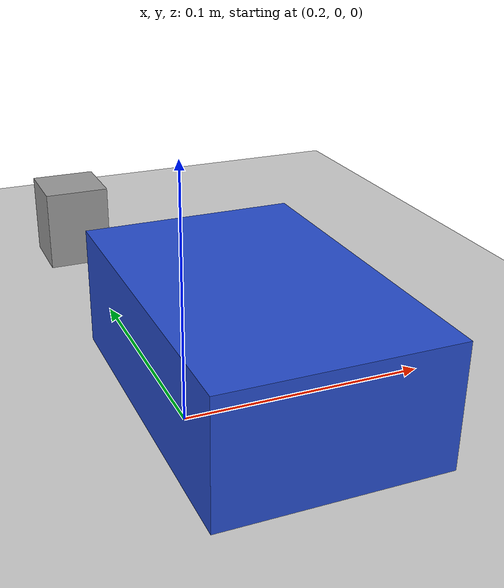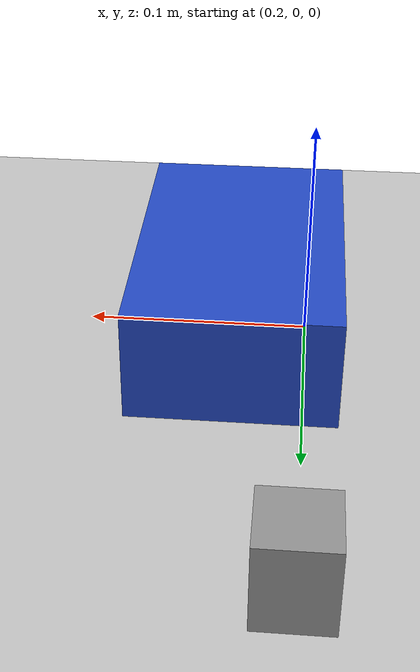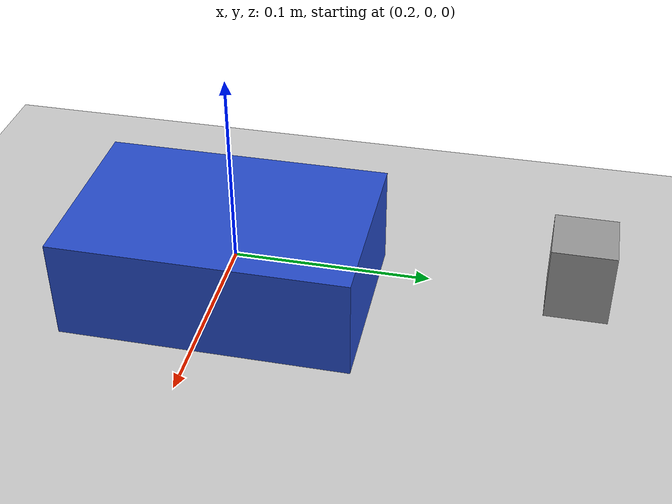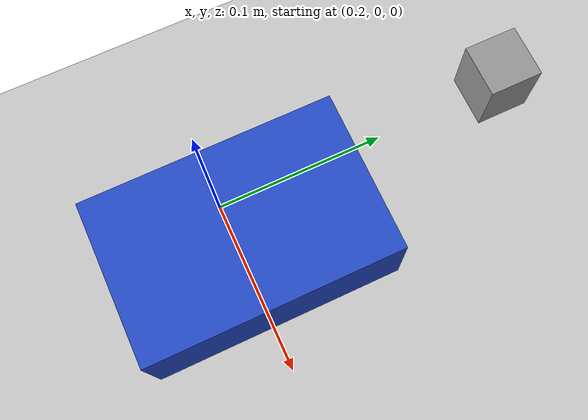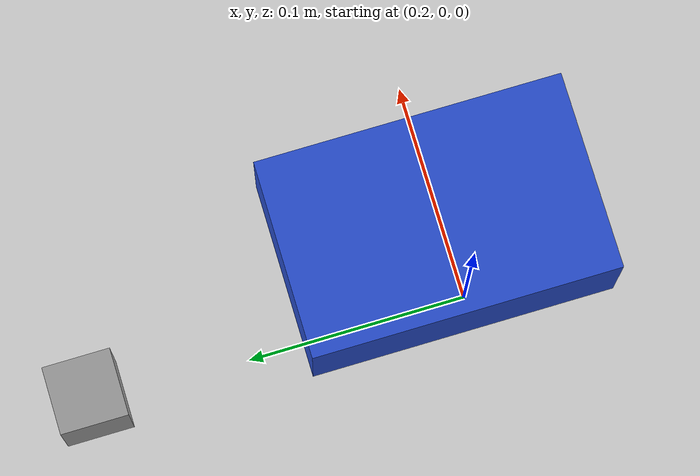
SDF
<sdf version="1.7">
 <world name="default">
  <light name="sun" type="directional">
   <pose>0 0 10 0 -0 0</pose>
   <diffuse>0.8 0.8 0.8 1</diffuse>
   <specular>0.2 0.2 0.2 1</specular>
   <attenuation>
    <range>1000</range>
    <constant>0.9</constant>
    <linear>0.01</linear>
    <quadratic>0.001</quadratic>
   </attenuation>
   <direction>-0.5 0.1 -0.9</direction>
   <spot><inner_angle>0</inner_angle><outer_angle>0</outer_angle><falloff>0</falloff></spot>
  </light>
  <model name="ground_plane">
   <pose>0.1 0 0 0 -0 0</pose>
   <static>1</static>
   <link name="link">
    <collision name="collision">
     <geometry><plane><normal>0 0 1</normal><size>100 100</size></plane></geometry>
     <surface>
      <contact><collide_bitmask>65535</collide_bitmask></contact>
      <friction><ode><mu>100</mu><mu2>50</mu2></ode></friction>
     </surface>
    </collision>
    <visual name="visual">
     <cast_shadows>0</cast_shadows>
     <geometry><plane><normal>0 0 1</normal><size>100 100</size></plane></geometry>
     <material>
      <script><uri>file://media/materials/scripts/gazebo.material</uri><name>Gazebo/Grey</name></script>
     </material>
    </visual>
   </link>
  </model>
  <gravity>0 0 -9.8</gravity>
  <magnetic_field>6e-06 2.3e-05 -4.2e-05</magnetic_field>
  <atmosphere type="adiabatic"/>
  <physics type="ode">
   <max_step_size>0.001</max_step_size>
   <real_time_factor>1</real_time_factor>
   <real_time_update_rate>1000</real_time_update_rate>
  </physics>
  <scene><ambient>0.4 0.4 0.4 1</ambient><background>0.7 0.7 0.7 1</background><shadows>1</shadows></scene>
  <spherical_coordinates>
   <surface_model>EARTH_WGS84</surface_model>
   <latitude_deg>0</latitude_deg>
   <longitude_deg>0</longitude_deg>
   <elevation>0</elevation>
   <heading_deg>0</heading_deg>
  </spherical_coordinates>
  <model name="RealSenseBox">
   <link name="link_0">
    <inertial>
     <mass>0.1</mass>
     <inertia>
      <ixx>0.0166667</ixx>
      <ixy>0</ixy>
      <ixz>0</ixz>
      <iyy>0.0166667</iyy>
      <iyz>0</iyz>
      <izz>0.0166667</izz>
     </inertia>
    </inertial>
    <visual name="visual">
     <geometry><box><size>0.14 0.09 0.05</size></box></geometry>
     <material>
      <lighting>1</lighting>
      <script><uri>file://media/materials/scripts/gazebo.material</uri><name>Gazebo/Blue</name></script>
      <shader type="pixel"><normal_map>__default__</normal_map></shader>
      <ambient>0 0 1 1</ambient>
      <diffuse>0 0 1 1</diffuse>
      <specular>0.01 0.01 0.01 1</specular>
      <emissive>0 0 0 1</emissive>
     </material>
    </visual>
    <collision name="collision">
     <geometry><box><size>0.14 0.09 0.05</size></box></geometry>
     <surface>
      <friction>
       <ode><mu>1</mu><mu2>1</mu2><fdir1>0 0 0</fdir1><slip1>0</slip1><slip2>0</slip2></ode>
       <torsional>
        <coefficient>1</coefficient>
        <patch_radius>0</patch_radius>
        <surface_radius>0</surface_radius>
        <use_patch_radius>1</use_patch_radius>
        <ode><slip>0</slip></ode>
       </torsional>
      </friction>
      <bounce><restitution_coefficient>0</restitution_coefficient><threshold>1e+06</threshold></bounce>
      <contact>
       <collide_without_contact>0</collide_without_contact>
       <collide_without_contact_bitmask>1</collide_without_contact_bitmask>
       <collide_bitmask>1</collide_bitmask>
       <ode>
        <soft_cfm>0</soft_cfm>
        <soft_erp>0.2</soft_erp>
        <kp>1e+13</kp>
        <kd>1</kd>
        <max_vel>0.01</max_vel>
        <min_depth>0</min_depth>
       </ode>
       <bullet>
        <split_impulse>1</split_impulse>
        <split_impulse_penetration_threshold>-0.01</split_impulse_penetration_threshold>
        <soft_cfm>0</soft_cfm>
        <soft_erp>0.2</soft_erp>
        <kp>1e+13</kp>
        <kd>1</kd>
       </bullet>
      </contact>
     </surface>
    </collision>
   </link>
   <static>0</static>
   <pose>0.23 0.004899 0.025001 -2e-06 2e-05 1.5708</pose>
  </model>
  <model name="drag_box">
   <link name="link_1">
    <inertial>
     <mass>0.001</mass>
     <inertia>
      <ixx>0.00016667</ixx>
      <ixy>0</ixy>
      <ixz>0</ixz>
      <iyy>0.00016667</iyy>
      <iyz>0</iyz>
      <izz>0.00016667</izz>
     </inertia>
    </inertial>
    <visual name="visual">
     <geometry><box><size>0.03048 0.03048 0.0381</size></box></geometry>
     <material>
      <lighting>1</lighting>
      <script><uri>file://media/materials/scripts/gazebo.material</uri><name>Gazebo/Grey</name></script>
      <shader type="pixel"><normal_map>__default__</normal_map></shader>
      <ambient>0.3 0.3 0.3 1</ambient>
      <diffuse>0.7 0.7 0.7 1</diffuse>
      <specular>0.01 0.01 0.01 1</specular>
      <emissive>0 0 0 1</emissive>
     </material>
    </visual>
    <collision name="collision">
     <geometry><box><size>0.03048 0.03048 0.0381</size></box></geometry>
     <surface>
      <friction>
       <ode><mu>20</mu><mu2>20</mu2><fdir1>0 0 0</fdir1><slip1>0</slip1><slip2>0</slip2></ode>
       <torsional>
        <coefficient>1</coefficient>
        <patch_radius>0</patch_radius>
        <surface_radius>0</surface_radius>
        <use_patch_radius>1</use_patch_radius>
        <ode><slip>0</slip></ode>
       </torsional>
      </friction>
      <bounce><restitution_coefficient>0</restitution_coefficient><threshold>1e+06</threshold></bounce>
      <contact>
       <collide_without_contact>0</collide_without_contact>
       <collide_without_contact_bitmask>1</collide_without_contact_bitmask>
       <collide_bitmask>1</collide_bitmask>
       <ode>
        <soft_cfm>0</soft_cfm>
        <soft_erp>0.2</soft_erp>
        <kp>1e+13</kp>
        <kd>1</kd>
        <max_vel>0.01</max_vel>
        <min_depth>0</min_depth>
       </ode>
       <bullet>
        <split_impulse>1</split_impulse>
        <split_impulse_penetration_threshold>-0.01</split_impulse_penetration_threshold>
        <soft_cfm>0</soft_cfm>
        <soft_erp>0.2</soft_erp>
        <kp>1e+13</kp>
        <kd>1</kd>
       </bullet>
      </contact>
     </surface>
    </collision>
   </link>
   <static>0</static>
   <pose>0.201215 0.172405 0.01905 8e-06 -6e-06 6e-06</pose>
  </model>
 </world>
</sdf>
